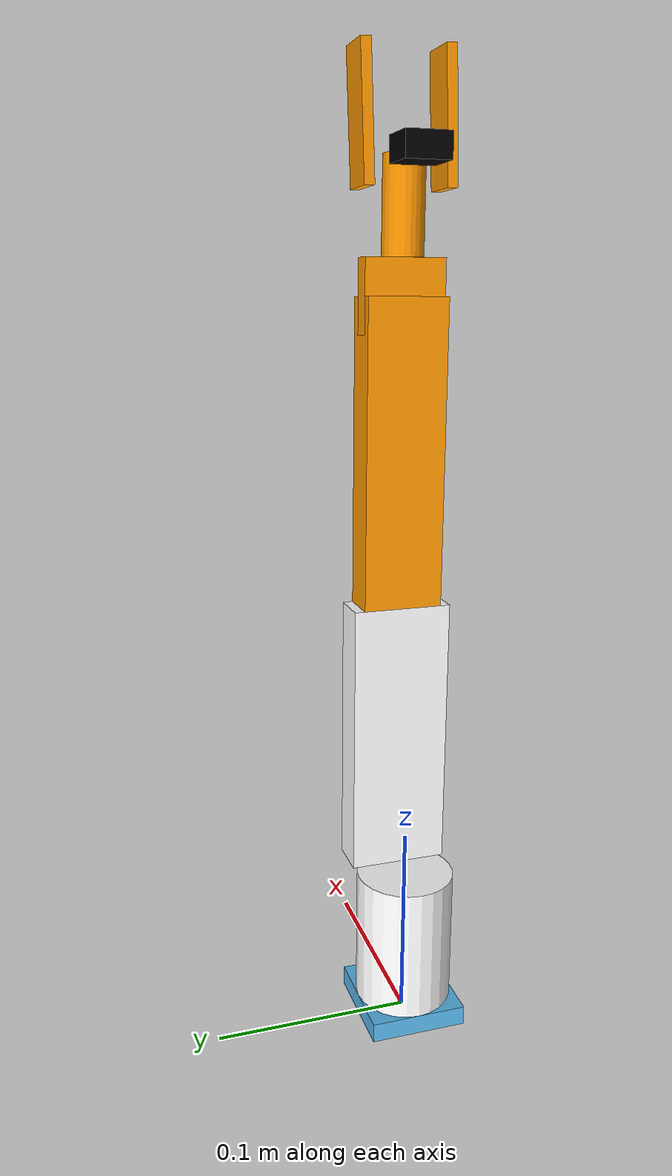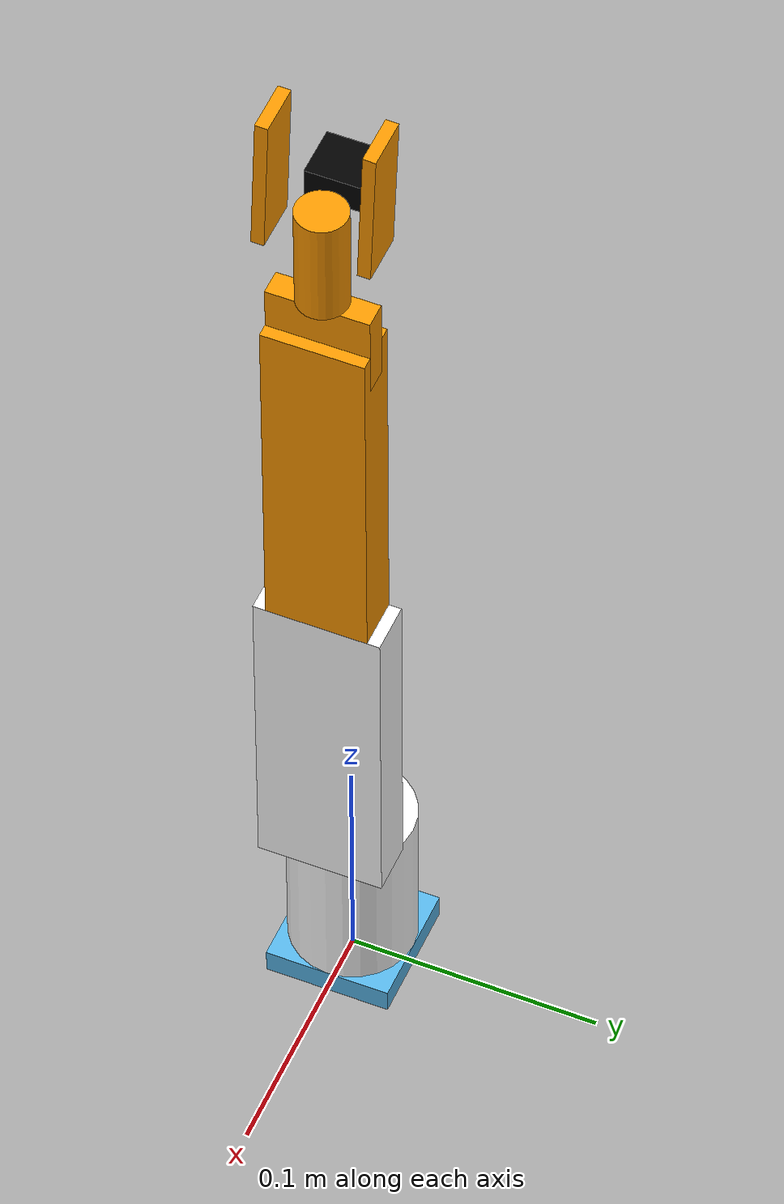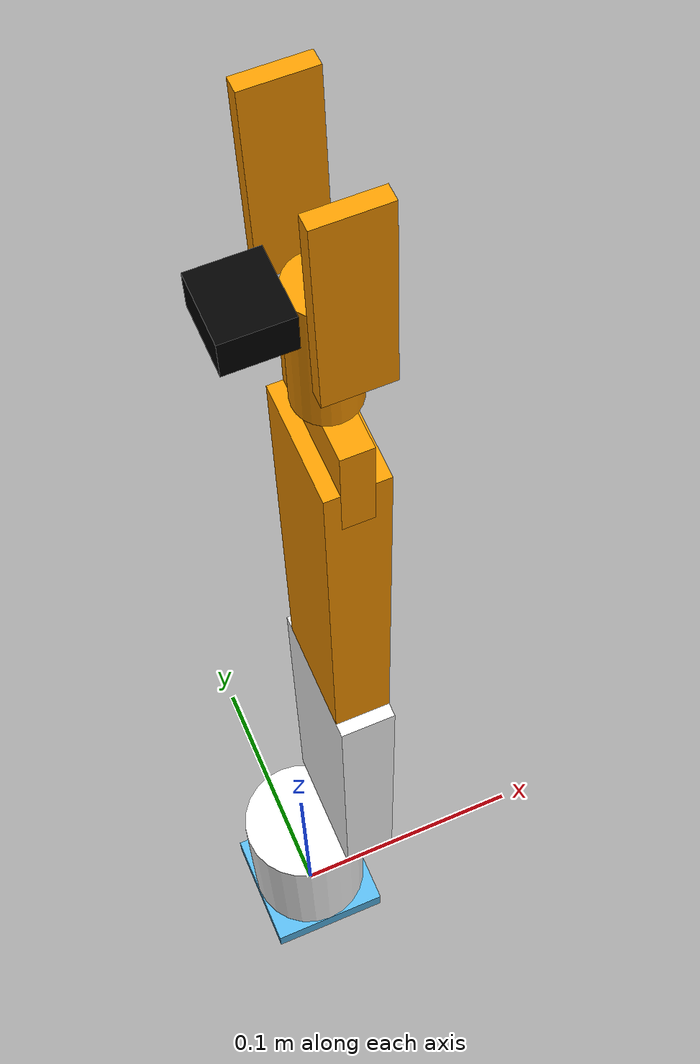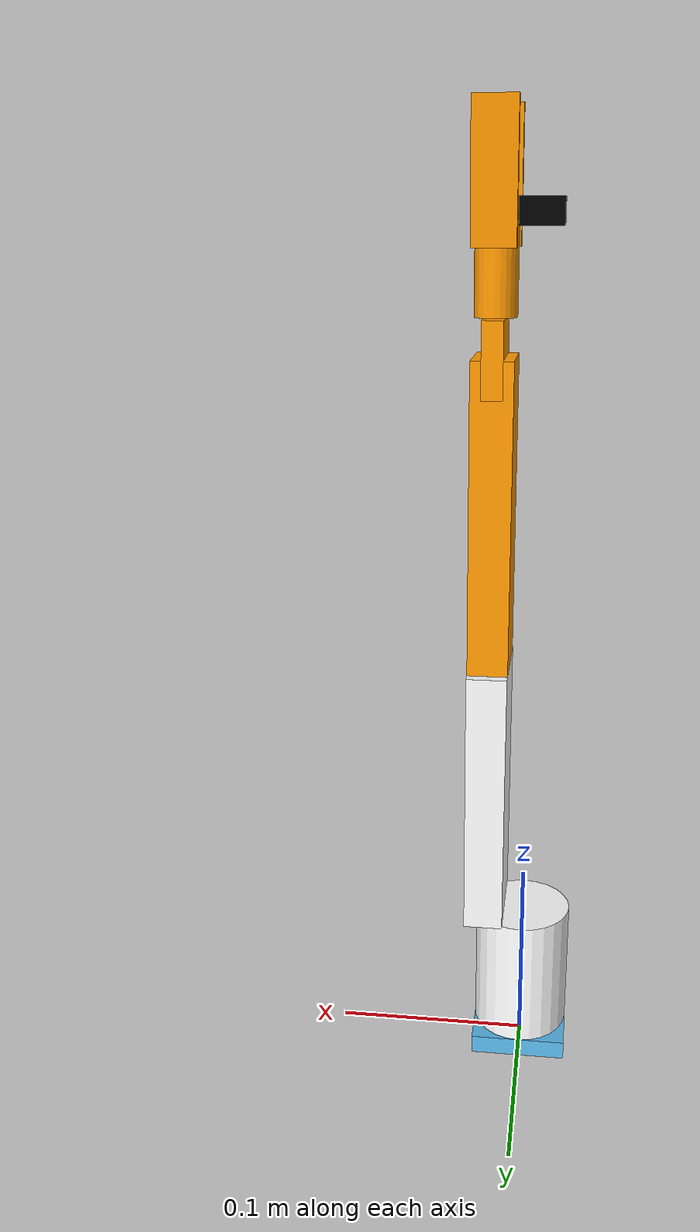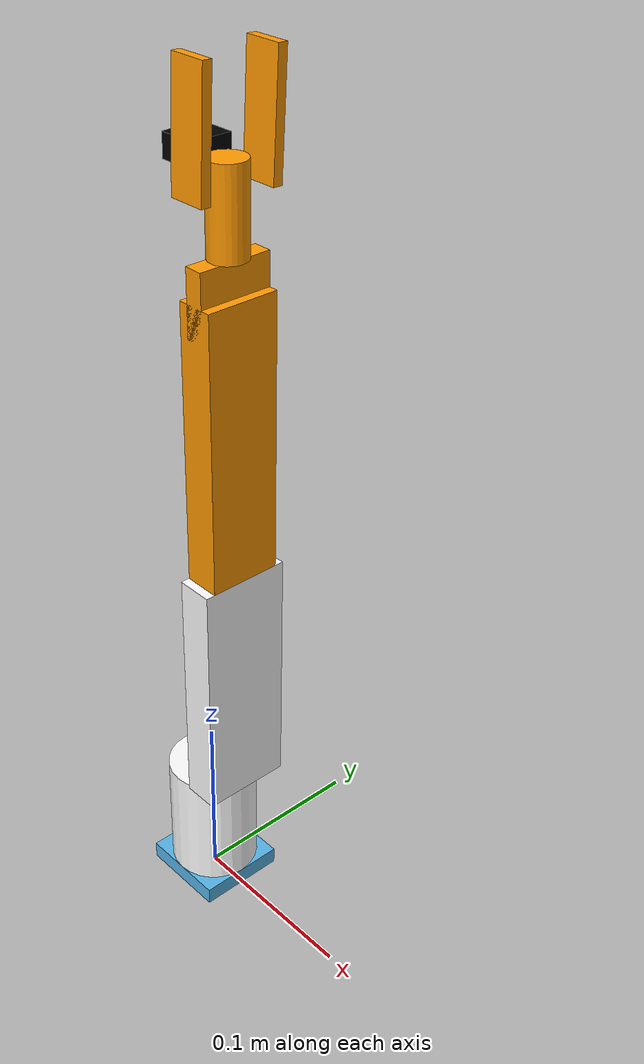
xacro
<?xml version="1.0"?>
<robot name="arips_arm" xmlns:xacro="http://ros.org/wiki/xacro">

  <xacro:arg name="use_sim_time" default="true"/>
  <xacro:include filename="$(find arips_arm_description)/urdf/definir_hardware_ros2_control.xacro"/>

  <material name="white">
    <color rgba="1 1 1 1"/>
  </material>

  <material name="black">
    <color rgba="0 0 0 1"/>
  </material>

  <material name="orange">
    <color rgba="1 0.6 0 1"/>
  </material>

  <xacro:property name="link1_sidelen" value="0.05" />
  <xacro:property name="link1_height" value="0.01" />

  <xacro:property name="link2_height" value="0.07" />
  <xacro:property name="link2_radius" value="0.025" />

  <xacro:property name="link3_len" value="0.14" />
  <xacro:property name="link3_thick" value="0.02" />
  <xacro:property name="link3_width" value="0.05" />

  <xacro:property name="link4_len" value="0.15" />
  <xacro:property name="link4_thick" value="0.02" />
  <xacro:property name="link4_width" value="0.04" />

  <xacro:property name="link5_len" value="0.035" />
  <xacro:property name="link5_thick" value="0.01" />
  <xacro:property name="link5_width" value="0.04" />

  <xacro:property name="link6_len" value="0.085" />
  <xacro:property name="link6_radius" value="0.01" />

  <xacro:property name="gripper_open_angle" value="0.06" />

  <link name="world">
    <origin xyz="0.0 0.0 0.0" rpy="0 0 0"/>
  </link>

  <joint name="base_joint" type="fixed">
    <parent link="world"/>
    <child link="arm_base_link"/>
    <!--origin xyz="0.0 0.0 0.0" rpy="0 0 -1.5707"/--> <!--  - - - - - - OJO MUCHO OJO - - - -  - - - -->
    <origin xyz="0.0 0.0 0.0" rpy="0 0 0"/> <!--  - - - - - - OJO MUCHO OJO - - - -  - - - -->
  </joint>

  <link name="arm_base_link">
    <visual>
      <geometry>
        <box size="${link1_sidelen} ${link1_sidelen} ${link1_height}"/>
      </geometry>
      <origin xyz="0 0 ${link1_height/2}"/>
      <!--material name="black"/-->
    </visual>
    <collision>
      <geometry>
        <box size="${link1_sidelen} ${link1_sidelen} ${link1_height}"/>
      </geometry>
      <origin xyz="0 0 ${link1_height/2}"/>
      <!--material name="black"/-->
    </collision>
  </link>

  <link name="link2" >
    <visual>
      <geometry>
        <cylinder length="${link2_height}" radius="${link2_radius}"/>
      </geometry>
      <origin xyz="0 0 ${link2_height/2}"/>
      <material name="white"/>
    </visual>
    <collision>
      <geometry>
        <cylinder length="${link2_height}" radius="${link2_radius}"/>
      </geometry>
      <origin xyz="0 0 ${link2_height/2}"/>
      <material name="white"/>
    </collision>
  </link>

  <link name="link3" >
    <visual>
      <geometry>
        <box size="${link3_thick} ${link3_width} ${link3_len}"/>
      </geometry>
      <origin xyz="0 0 ${link3_len/2}"/>
      <material name="white"/>
    </visual>
  </link>

  <link name="link4" >
    <visual>
      <geometry>
        <box size="${link4_thick} ${link4_width} ${link4_len}"/>
      </geometry>
      <origin xyz="0 0 ${link4_len/2}"/>
      <material name="orange"/>
    </visual>
  </link>

  <link name="link5" >
    <visual>
      <geometry>
        <box size="${link5_thick} ${link5_width} ${link5_len}"/>
      </geometry>
      <origin xyz="0 0 0"/>
      <material name="orange"/>
    </visual>
  </link>

  <link name="link6" >
    <visual>
      <geometry>
        <cylinder length="${link6_len-0.04}" radius="${link6_radius}"/>
      </geometry>
      <origin xyz="0 0 ${link6_len/2-0.02}"/>
      <material name="orange"/>
    </visual>
  </link>

  <link name="tool0">
  <visual>
      <geometry>
        <box size="0.012 0.022 0.02"/>
      </geometry>
      <origin xyz="-0.04 0 0.02"/>
      <material name="black"/>
    </visual>
  </link>

  <joint name="joint1" type="revolute">
    <parent link="arm_base_link"/>
    <child link="link2"/>

    <axis xyz="0 0 1"/>
    <origin xyz="0 0 ${link1_height}"/>

    <limit effort="1000.0" lower="-2.09" upper="2.09" velocity="500"/> <!-- 2.09 = 120 grados -->
  </joint>

  <joint name="joint2" type="revolute">
    <parent link="link2"/>
    <child link="link3"/>

    <axis xyz="0 1 0"/>
    <origin xyz="0.02 0 ${link2_height}"/>

    <limit effort="1000.0" lower="-2.09" upper="2.09" velocity="500"/>
  </joint>

  <joint name="joint3" type="revolute">
    <parent link="link3"/>
    <child link="link4"/>

    <axis xyz="0 1 0"/>
    <origin xyz="0 0 ${link3_len}"/>

    <limit effort="1000.0" lower="-2.09" upper="2.09" velocity="1.0"/>
  </joint>

  <joint name="joint4" type="revolute">
    <parent link="link4"/>
    <child link="link5"/>

    <axis xyz="0 1 0"/>
    <origin xyz="0 0 ${link4_len}"/>

    <limit effort="1000.0" lower="-2.09" upper="2.09" velocity="1.0"/>
  </joint>

  <joint name="joint5" type="revolute">
    <parent link="link5"/>
    <child link="link6"/>

    <axis xyz="0 0 1"/>
    <origin xyz="0 0 ${link5_len / 2}"/>

    <limit effort="1000.0" lower="-3.1" upper="3.1" velocity="1.0"/>
  </joint>

  <joint name="link6-tool0" type="fixed">
      <parent link="link6" />
      <child link="tool0" />
      <origin xyz="0 0 ${link6_len}" rpy="0 -1.57075 0" />
    </joint>

    <joint name="tool0_gripper" type="fixed">
      <parent link="tool0" />
      <child link="gripper_base" />
      <origin xyz="0.0 0 0" rpy="0 0 0" />
    </joint>

  <joint name="gripper_joint" type="revolute">
    <parent link="gripper_base"/>
    <child link="gripper_link_left"/>

    <axis xyz="0 0 1"/>
    <origin xyz="-0.055 0.02 0"/>

    <limit effort="1000.0" lower="0.02" upper="${gripper_open_angle}" velocity="1.0"/>
  </joint>

  <joint name="gripper_joint_right" type="revolute">
    <mimic joint="gripper_joint" multiplier="-1"/>

    <parent link="gripper_base"/>
    <child link="gripper_link_right"/>

    <axis xyz="0 0 1"/>
    <origin xyz="-0.055 -0.02 0"/>

    <limit effort="1000.0" lower="${gripper_open_angle}" upper="0.02" velocity="1.0"/>
  </joint>

    <link name="gripper_base">
   </link>

  <link name="gripper_link_left" >
    <visual>
      <geometry>
        <box size="0.06 0.005 0.02"/>
      </geometry>
      <origin xyz="0.03 0 0"/>
      <material name="orange"/>
    </visual>
  </link>

  <link name="gripper_link_right" >
    <visual>
      <geometry>
        <box size="0.06 0.005 0.02"/>
      </geometry>
      <origin xyz="0.03 0 0"/>
      <material name="orange"/>
    </visual>
  </link>

  <xacro:definir_hardware name="brazo" use_sim_time="$(arg use_sim_time)"/>

</robot>
